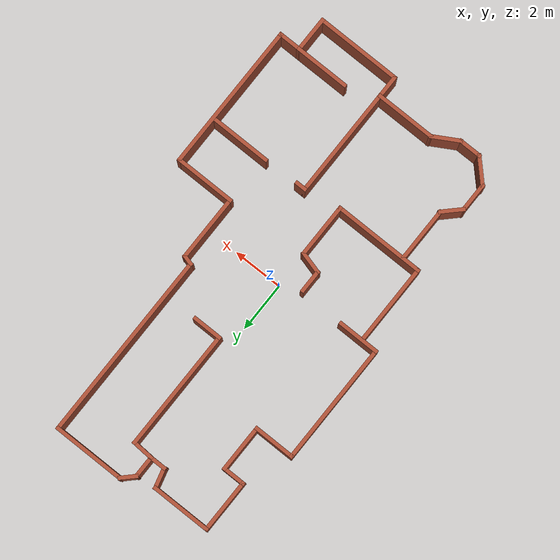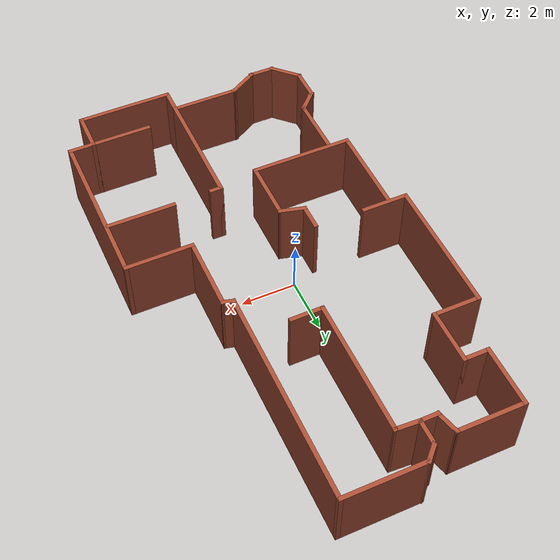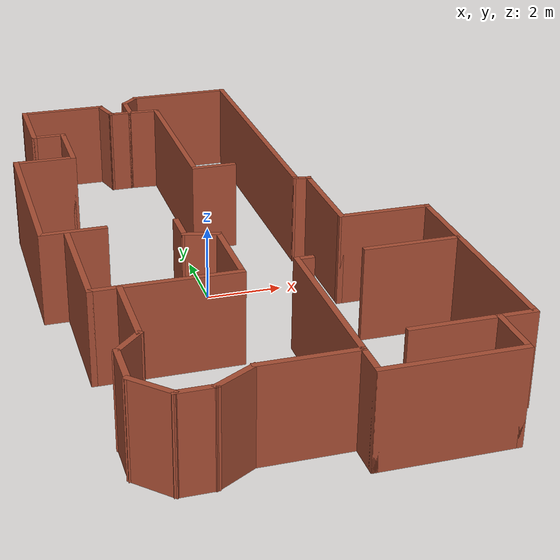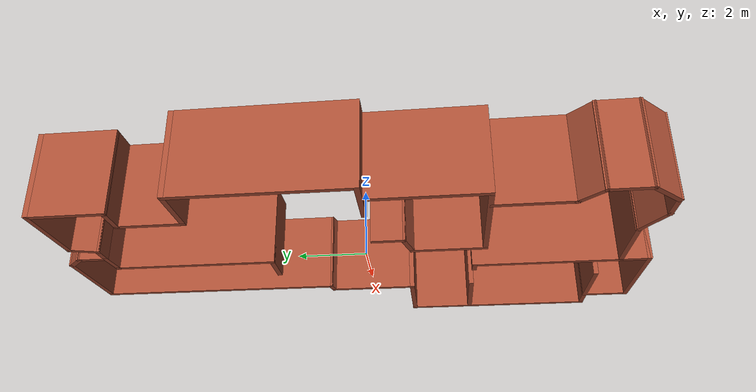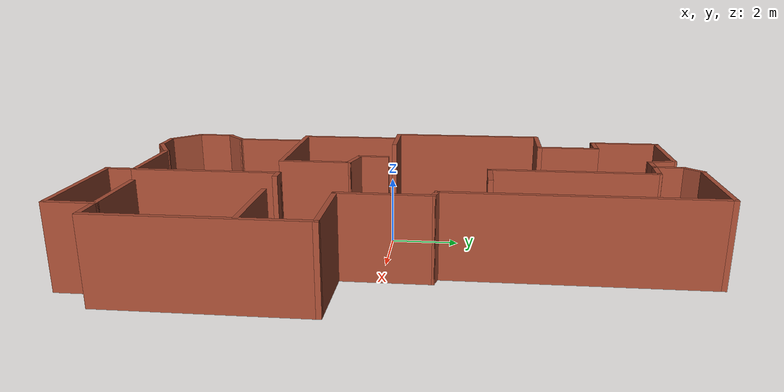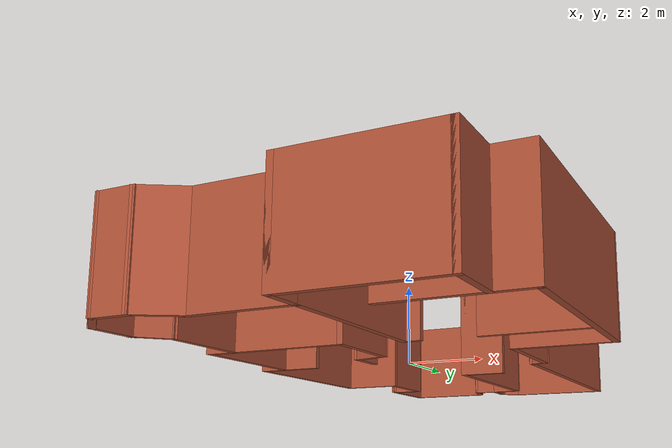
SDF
<?xml version='1.0'?>
<sdf version='1.6'>
  <model name='map_39'>
    <pose frame=''>0.634099 0.360121 0 0 -0 0</pose>
    <link name='Wall_0'>
      <collision name='Wall_0_Collision'>
        <geometry>
          <box>
            <size>2.5 0.15 2.5</size>
          </box>
        </geometry>
        <pose frame=''>0 0 1.25 0 -0 0</pose>
      </collision>
      <visual name='Wall_0_Visual'>
        <pose frame=''>0 0 1.25 0 -0 0</pose>
        <geometry>
          <box>
            <size>2.5 0.15 2.5</size>
          </box>
        </geometry>
        <material>
          <script>
            <uri>file://media/materials/scripts/gazebo.material</uri>
            <name>Gazebo/Bricks</name>
          </script>
          <ambient>1 1 1 1</ambient>
        </material>
        <meta>
          <layer>0</layer>
        </meta>
      </visual>
      <pose frame=''>-3.00691 8.2096 0 0 -0 3.14159</pose>
    </link>
    <link name='Wall_1'>
      <collision name='Wall_1_Collision'>
        <geometry>
          <box>
            <size>2.25 0.15 2.5</size>
          </box>
        </geometry>
        <pose frame=''>0 0 1.25 0 -0 0</pose>
      </collision>
      <visual name='Wall_1_Visual'>
        <pose frame=''>0 0 1.25 0 -0 0</pose>
        <geometry>
          <box>
            <size>2.25 0.15 2.5</size>
          </box>
        </geometry>
        <material>
          <script>
            <uri>file://media/materials/scripts/gazebo.material</uri>
            <name>Gazebo/Bricks</name>
          </script>
          <ambient>1 1 1 1</ambient>
        </material>
        <meta>
          <layer>0</layer>
        </meta>
      </visual>
      <pose frame=''>-4.18191 7.1596 0 0 -0 -1.5708</pose>
    </link>
    <link name='Wall_11'>
      <collision name='Wall_11_Collision'>
        <geometry>
          <box>
            <size>2.25 0.15 2.5</size>
          </box>
        </geometry>
        <pose frame=''>0 0 1.25 0 -0 0</pose>
      </collision>
      <visual name='Wall_11_Visual'>
        <pose frame=''>0 0 1.25 0 -0 0</pose>
        <geometry>
          <box>
            <size>2.25 0.15 2.5</size>
          </box>
        </geometry>
        <material>
          <script>
            <uri>file://media/materials/scripts/gazebo.material</uri>
            <name>Gazebo/Bricks</name>
          </script>
          <ambient>1 1 1 1</ambient>
        </material>
        <meta>
          <layer>0</layer>
        </meta>
      </visual>
      <pose frame=''>-3.59749 -4.93197 0 0 -0 -1.5708</pose>
    </link>
    <link name='Wall_12'>
      <collision name='Wall_12_Collision'>
        <geometry>
          <box>
            <size>1 0.15 2.5</size>
          </box>
        </geometry>
        <pose frame=''>0 0 1.25 0 -0 0</pose>
      </collision>
      <visual name='Wall_12_Visual'>
        <pose frame=''>0 0 1.25 0 -0 0</pose>
        <geometry>
          <box>
            <size>1 0.15 2.5</size>
          </box>
        </geometry>
        <material>
          <script>
            <uri>file://media/materials/scripts/gazebo.material</uri>
            <name>Gazebo/Bricks</name>
          </script>
          <ambient>1 1 1 1</ambient>
        </material>
        <meta>
          <layer>0</layer>
        </meta>
      </visual>
      <pose frame=''>-3.89801 -6.28249 0 0 -0 -2.35619</pose>
    </link>
    <link name='Wall_13'>
      <collision name='Wall_13_Collision'>
        <geometry>
          <box>
            <size>1.25 0.15 2.5</size>
          </box>
        </geometry>
        <pose frame=''>0 0 1.25 0 -0 0</pose>
      </collision>
      <visual name='Wall_13_Visual'>
        <pose frame=''>0 0 1.25 0 -0 0</pose>
        <geometry>
          <box>
            <size>1.25 0.15 2.5</size>
          </box>
        </geometry>
        <material>
          <script>
            <uri>file://media/materials/scripts/gazebo.material</uri>
            <name>Gazebo/Bricks</name>
          </script>
          <ambient>1 1 1 1</ambient>
        </material>
        <meta>
          <layer>0</layer>
        </meta>
      </visual>
      <pose frame=''>-4.19853 -7.13301 0 0 -0 -1.5708</pose>
    </link>
    <link name='Wall_14'>
      <collision name='Wall_14_Collision'>
        <geometry>
          <box>
            <size>1.25 0.15 2.5</size>
          </box>
        </geometry>
        <pose frame=''>0 0 1.25 0 -0 0</pose>
      </collision>
      <visual name='Wall_14_Visual'>
        <pose frame=''>0 0 1.25 0 -0 0</pose>
        <geometry>
          <box>
            <size>1.25 0.15 2.5</size>
          </box>
        </geometry>
        <material>
          <script>
            <uri>file://media/materials/scripts/gazebo.material</uri>
            <name>Gazebo/Bricks</name>
          </script>
          <ambient>1 1 1 1</ambient>
        </material>
        <meta>
          <layer>0</layer>
        </meta>
      </visual>
      <pose frame=''>-3.80963 -8.07192 0 0 -0 -0.785398</pose>
    </link>
    <link name='Wall_15'>
      <collision name='Wall_15_Collision'>
        <geometry>
          <box>
            <size>1 0.15 2.5</size>
          </box>
        </geometry>
        <pose frame=''>0 0 1.25 0 -0 0</pose>
      </collision>
      <visual name='Wall_15_Visual'>
        <pose frame=''>0 0 1.25 0 -0 0</pose>
        <geometry>
          <box>
            <size>1 0.15 2.5</size>
          </box>
        </geometry>
        <material>
          <script>
            <uri>file://media/materials/scripts/gazebo.material</uri>
            <name>Gazebo/Bricks</name>
          </script>
          <ambient>1 1 1 1</ambient>
        </material>
        <meta>
          <layer>0</layer>
        </meta>
      </visual>
      <pose frame=''>-2.99572 -8.46083 0 0 -0 0</pose>
    </link>
    <link name='Wall_16'>
      <collision name='Wall_16_Collision'>
        <geometry>
          <box>
            <size>1.25 0.15 2.5</size>
          </box>
        </geometry>
        <pose frame=''>0 0 1.25 0 -0 0</pose>
      </collision>
      <visual name='Wall_16_Visual'>
        <pose frame=''>0 0 1.25 0 -0 0</pose>
        <geometry>
          <box>
            <size>1.25 0.15 2.5</size>
          </box>
        </geometry>
        <material>
          <script>
            <uri>file://media/materials/scripts/gazebo.material</uri>
            <name>Gazebo/Bricks</name>
          </script>
          <ambient>1 1 1 1</ambient>
        </material>
        <meta>
          <layer>0</layer>
        </meta>
      </visual>
      <pose frame=''>-2.0944 -8.18583 0 0 -0 0.523599</pose>
    </link>
    <link name='Wall_17'>
      <collision name='Wall_17_Collision'>
        <geometry>
          <box>
            <size>2.5 0.15 2.5</size>
          </box>
        </geometry>
        <pose frame=''>0 0 1.25 0 -0 0</pose>
      </collision>
      <visual name='Wall_17_Visual'>
        <pose frame=''>0 0 1.25 0 -0 0</pose>
        <geometry>
          <box>
            <size>2.5 0.15 2.5</size>
          </box>
        </geometry>
        <material>
          <script>
            <uri>file://media/materials/scripts/gazebo.material</uri>
            <name>Gazebo/Bricks</name>
          </script>
          <ambient>1 1 1 1</ambient>
        </material>
        <meta>
          <layer>0</layer>
        </meta>
      </visual>
      <pose frame=''>-0.443089 -7.91083 0 0 -0 0</pose>
    </link>
    <link name='Wall_2'>
      <collision name='Wall_2_Collision'>
        <geometry>
          <box>
            <size>1 0.15 2.5</size>
          </box>
        </geometry>
        <pose frame=''>0 0 1.25 0 -0 0</pose>
      </collision>
      <visual name='Wall_2_Visual'>
        <pose frame=''>0 0 1.25 0 -0 0</pose>
        <geometry>
          <box>
            <size>1 0.15 2.5</size>
          </box>
        </geometry>
        <material>
          <script>
            <uri>file://media/materials/scripts/gazebo.material</uri>
            <name>Gazebo/Bricks</name>
          </script>
          <ambient>1 1 1 1</ambient>
        </material>
        <meta>
          <layer>0</layer>
        </meta>
      </visual>
      <pose frame=''>-3.75691 6.1096 0 0 -0 0</pose>
    </link>
    <link name='Wall_20'>
      <collision name='Wall_20_Collision'>
        <geometry>
          <box>
            <size>1 0.15 2.5</size>
          </box>
        </geometry>
        <pose frame=''>0 0 1.25 0 -0 0</pose>
      </collision>
      <visual name='Wall_20_Visual'>
        <pose frame=''>0 0 1.25 0 -0 0</pose>
        <geometry>
          <box>
            <size>1 0.15 2.5</size>
          </box>
        </geometry>
        <material>
          <script>
            <uri>file://media/materials/scripts/gazebo.material</uri>
            <name>Gazebo/Bricks</name>
          </script>
          <ambient>1 1 1 1</ambient>
        </material>
        <meta>
          <layer>0</layer>
        </meta>
      </visual>
      <pose frame=''>0.731911 -8.33583 0 0 -0 -1.5708</pose>
    </link>
    <link name='Wall_21'>
      <collision name='Wall_21_Collision'>
        <geometry>
          <box>
            <size>3.5 0.15 2.5</size>
          </box>
        </geometry>
        <pose frame=''>0 0 1.25 0 -0 0</pose>
      </collision>
      <visual name='Wall_21_Visual'>
        <pose frame=''>0 0 1.25 0 -0 0</pose>
        <geometry>
          <box>
            <size>3.5 0.15 2.5</size>
          </box>
        </geometry>
        <material>
          <script>
            <uri>file://media/materials/scripts/gazebo.material</uri>
            <name>Gazebo/Bricks</name>
          </script>
          <ambient>1 1 1 1</ambient>
        </material>
        <meta>
          <layer>0</layer>
        </meta>
      </visual>
      <pose frame=''>2.40691 -8.76083 0 0 -0 0</pose>
    </link>
    <link name='Wall_22'>
      <collision name='Wall_22_Collision'>
        <geometry>
          <box>
            <size>1.5 0.15 2.5</size>
          </box>
        </geometry>
        <pose frame=''>0 0 1.25 0 -0 0</pose>
      </collision>
      <visual name='Wall_22_Visual'>
        <pose frame=''>0 0 1.25 0 -0 0</pose>
        <geometry>
          <box>
            <size>1.5 0.15 2.5</size>
          </box>
        </geometry>
        <material>
          <script>
            <uri>file://media/materials/scripts/gazebo.material</uri>
            <name>Gazebo/Bricks</name>
          </script>
          <ambient>1 1 1 1</ambient>
        </material>
        <meta>
          <layer>0</layer>
        </meta>
      </visual>
      <pose frame=''>4.08191 -8.08583 0 0 -0 1.5708</pose>
    </link>
    <link name='Wall_23'>
      <collision name='Wall_23_Collision'>
        <geometry>
          <box>
            <size>1 0.15 2.5</size>
          </box>
        </geometry>
        <pose frame=''>0 0 1.25 0 -0 0</pose>
      </collision>
      <visual name='Wall_23_Visual'>
        <pose frame=''>0 0 1.25 0 -0 0</pose>
        <geometry>
          <box>
            <size>1 0.15 2.5</size>
          </box>
        </geometry>
        <material>
          <script>
            <uri>file://media/materials/scripts/gazebo.material</uri>
            <name>Gazebo/Bricks</name>
          </script>
          <ambient>1 1 1 1</ambient>
        </material>
        <meta>
          <layer>0</layer>
        </meta>
      </visual>
      <pose frame=''>4.50691 -7.41083 0 0 -0 0</pose>
    </link>
    <link name='Wall_24'>
      <collision name='Wall_24_Collision'>
        <geometry>
          <box>
            <size>6 0.15 2.5</size>
          </box>
        </geometry>
        <pose frame=''>0 0 1.25 0 -0 0</pose>
      </collision>
      <visual name='Wall_24_Visual'>
        <pose frame=''>0 0 1.25 0 -0 0</pose>
        <geometry>
          <box>
            <size>6 0.15 2.5</size>
          </box>
        </geometry>
        <material>
          <script>
            <uri>file://media/materials/scripts/gazebo.material</uri>
            <name>Gazebo/Bricks</name>
          </script>
          <ambient>1 1 1 1</ambient>
        </material>
        <meta>
          <layer>0</layer>
        </meta>
      </visual>
      <pose frame=''>4.93191 -4.48583 0 0 -0 1.5708</pose>
    </link>
    <link name='Wall_25'>
      <collision name='Wall_25_Collision'>
        <geometry>
          <box>
            <size>2.5 0.15 2.5</size>
          </box>
        </geometry>
        <pose frame=''>0 0 1.25 0 -0 0</pose>
      </collision>
      <visual name='Wall_25_Visual'>
        <pose frame=''>0 0 1.25 0 -0 0</pose>
        <geometry>
          <box>
            <size>2.5 0.15 2.5</size>
          </box>
        </geometry>
        <material>
          <script>
            <uri>file://media/materials/scripts/gazebo.material</uri>
            <name>Gazebo/Bricks</name>
          </script>
          <ambient>1 1 1 1</ambient>
        </material>
        <meta>
          <layer>0</layer>
        </meta>
      </visual>
      <pose frame=''>3.75691 -1.56083 0 0 -0 3.14159</pose>
    </link>
    <link name='Wall_26'>
      <collision name='Wall_26_Collision'>
        <geometry>
          <box>
            <size>2.75 0.15 2.5</size>
          </box>
        </geometry>
        <pose frame=''>0 0 1.25 0 -0 0</pose>
      </collision>
      <visual name='Wall_26_Visual'>
        <pose frame=''>0 0 1.25 0 -0 0</pose>
        <geometry>
          <box>
            <size>2.75 0.15 2.5</size>
          </box>
        </geometry>
        <material>
          <script>
            <uri>file://media/materials/scripts/gazebo.material</uri>
            <name>Gazebo/Bricks</name>
          </script>
          <ambient>1 1 1 1</ambient>
        </material>
        <meta>
          <layer>0</layer>
        </meta>
      </visual>
      <pose frame=''>2.58191 -0.260826 0 0 -0 1.5708</pose>
    </link>
    <link name='Wall_27'>
      <collision name='Wall_27_Collision'>
        <geometry>
          <box>
            <size>0.5 0.15 2.5</size>
          </box>
        </geometry>
        <pose frame=''>0 0 1.25 0 -0 0</pose>
      </collision>
      <visual name='Wall_27_Visual'>
        <pose frame=''>0 0 1.25 0 -0 0</pose>
        <geometry>
          <box>
            <size>0.5 0.15 2.5</size>
          </box>
        </geometry>
        <material>
          <script>
            <uri>file://media/materials/scripts/gazebo.material</uri>
            <name>Gazebo/Bricks</name>
          </script>
          <ambient>1 1 1 1</ambient>
        </material>
        <meta>
          <layer>0</layer>
        </meta>
      </visual>
      <pose frame=''>2.41287 1.08447 0 0 -0 2.87979</pose>
    </link>
    <link name='Wall_28'>
      <collision name='Wall_28_Collision'>
        <geometry>
          <box>
            <size>7.75 0.15 2.5</size>
          </box>
        </geometry>
        <pose frame=''>0 0 1.25 0 -0 0</pose>
      </collision>
      <visual name='Wall_28_Visual'>
        <pose frame=''>0 0 1.25 0 -0 0</pose>
        <geometry>
          <box>
            <size>7.75 0.15 2.5</size>
          </box>
        </geometry>
        <material>
          <script>
            <uri>file://media/materials/scripts/gazebo.material</uri>
            <name>Gazebo/Bricks</name>
          </script>
          <ambient>1 1 1 1</ambient>
        </material>
        <meta>
          <layer>0</layer>
        </meta>
      </visual>
      <pose frame=''>2.24384 4.92976 0 0 -0 1.5708</pose>
    </link>
    <link name='Wall_29'>
      <collision name='Wall_29_Collision'>
        <geometry>
          <box>
            <size>3 0.15 2.5</size>
          </box>
        </geometry>
        <pose frame=''>0 0 1.25 0 -0 0</pose>
      </collision>
      <visual name='Wall_29_Visual'>
        <pose frame=''>0 0 1.25 0 -0 0</pose>
        <geometry>
          <box>
            <size>3 0.15 2.5</size>
          </box>
        </geometry>
        <material>
          <script>
            <uri>file://media/materials/scripts/gazebo.material</uri>
            <name>Gazebo/Bricks</name>
          </script>
          <ambient>1 1 1 1</ambient>
        </material>
        <meta>
          <layer>0</layer>
        </meta>
      </visual>
      <pose frame=''>0.818837 8.72976 0 0 -0 3.14159</pose>
    </link>
    <link name='Wall_3'>
      <collision name='Wall_3_Collision'>
        <geometry>
          <box>
            <size>2 0.15 2.5</size>
          </box>
        </geometry>
        <pose frame=''>0 0 1.25 0 -0 0</pose>
      </collision>
      <visual name='Wall_3_Visual'>
        <pose frame=''>0 0 1.25 0 -0 0</pose>
        <geometry>
          <box>
            <size>2 0.15 2.5</size>
          </box>
        </geometry>
        <material>
          <script>
            <uri>file://media/materials/scripts/gazebo.material</uri>
            <name>Gazebo/Bricks</name>
          </script>
          <ambient>1 1 1 1</ambient>
        </material>
        <meta>
          <layer>0</layer>
        </meta>
      </visual>
      <pose frame=''>-3.33191 5.1846 0 0 -0 -1.5708</pose>
    </link>
    <link name='Wall_30'>
      <collision name='Wall_30_Collision'>
        <geometry>
          <box>
            <size>0.75 0.15 2.5</size>
          </box>
        </geometry>
        <pose frame=''>0 0 1.25 0 -0 0</pose>
      </collision>
      <visual name='Wall_30_Visual'>
        <pose frame=''>0 0 1.25 0 -0 0</pose>
        <geometry>
          <box>
            <size>0.75 0.15 2.5</size>
          </box>
        </geometry>
        <material>
          <script>
            <uri>file://media/materials/scripts/gazebo.material</uri>
            <name>Gazebo/Bricks</name>
          </script>
          <ambient>1 1 1 1</ambient>
        </material>
        <meta>
          <layer>0</layer>
        </meta>
      </visual>
      <pose frame=''>-0.818295 8.51763 0 0 -0 -2.35619</pose>
    </link>
    <link name='Wall_31'>
      <collision name='Wall_31_Collision'>
        <geometry>
          <box>
            <size>1 0.15 2.5</size>
          </box>
        </geometry>
        <pose frame=''>0 0 1.25 0 -0 0</pose>
      </collision>
      <visual name='Wall_31_Visual'>
        <pose frame=''>0 0 1.25 0 -0 0</pose>
        <geometry>
          <box>
            <size>1 0.15 2.5</size>
          </box>
        </geometry>
        <material>
          <script>
            <uri>file://media/materials/scripts/gazebo.material</uri>
            <name>Gazebo/Bricks</name>
          </script>
          <ambient>1 1 1 1</ambient>
        </material>
        <meta>
          <layer>0</layer>
        </meta>
      </visual>
      <pose frame=''>-1.03043 7.8805 0 0 -0 -1.5708</pose>
    </link>
    <link name='Wall_32'>
      <collision name='Wall_32_Collision'>
        <geometry>
          <box>
            <size>0.75 0.15 2.5</size>
          </box>
        </geometry>
        <pose frame=''>0 0 1.25 0 -0 0</pose>
      </collision>
      <visual name='Wall_32_Visual'>
        <pose frame=''>0 0 1.25 0 -0 0</pose>
        <geometry>
          <box>
            <size>0.75 0.15 2.5</size>
          </box>
        </geometry>
        <material>
          <script>
            <uri>file://media/materials/scripts/gazebo.material</uri>
            <name>Gazebo/Bricks</name>
          </script>
          <ambient>1 1 1 1</ambient>
        </material>
        <meta>
          <layer>0</layer>
        </meta>
      </visual>
      <pose frame=''>-1.33043 7.4555 0 0 -0 3.14159</pose>
    </link>
    <link name='Wall_33'>
      <collision name='Wall_33_Collision'>
        <geometry>
          <box>
            <size>0.930554 0.15 2.5</size>
          </box>
        </geometry>
        <pose frame=''>0 0 1.25 0 -0 0</pose>
      </collision>
      <visual name='Wall_33_Visual'>
        <pose frame=''>0 0 1.25 0 -0 0</pose>
        <geometry>
          <box>
            <size>0.930554 0.15 2.5</size>
          </box>
        </geometry>
        <material>
          <script>
            <uri>file://media/materials/scripts/gazebo.material</uri>
            <name>Gazebo/Bricks</name>
          </script>
          <ambient>1 1 1 1</ambient>
        </material>
        <meta>
          <layer>0</layer>
        </meta>
      </visual>
      <pose frame=''>-1.73117 7.83255 0 0 -0 1.83188</pose>
    </link>
    <link name='Wall_35'>
      <collision name='Wall_35_Collision'>
        <geometry>
          <box>
            <size>2.5 0.15 2.5</size>
          </box>
        </geometry>
        <pose frame=''>0 0 1.25 0 -0 0</pose>
      </collision>
      <visual name='Wall_35_Visual'>
        <pose frame=''>0 0 1.25 0 -0 0</pose>
        <geometry>
          <box>
            <size>2.5 0.15 2.5</size>
          </box>
        </geometry>
        <material>
          <script>
            <uri>file://media/materials/scripts/gazebo.material</uri>
            <name>Gazebo/Bricks</name>
          </script>
          <ambient>1 1 1 1</ambient>
        </material>
        <meta>
          <layer>0</layer>
        </meta>
      </visual>
      <pose frame=''>3.67679 -3.50745 0 0 -0 0</pose>
    </link>
    <link name='Wall_37'>
      <collision name='Wall_37_Collision'>
        <geometry>
          <box>
            <size>2.25 0.15 2.5</size>
          </box>
        </geometry>
        <pose frame=''>0 0 1.25 0 -0 0</pose>
      </collision>
      <visual name='Wall_37_Visual'>
        <pose frame=''>0 0 1.25 0 -0 0</pose>
        <geometry>
          <box>
            <size>2.25 0.15 2.5</size>
          </box>
        </geometry>
        <material>
          <script>
            <uri>file://media/materials/scripts/gazebo.material</uri>
            <name>Gazebo/Bricks</name>
          </script>
          <ambient>1 1 1 1</ambient>
        </material>
        <meta>
          <layer>0</layer>
        </meta>
      </visual>
      <pose frame=''>3.03191 -7.41083 0 0 -0 3.14159</pose>
    </link>
    <link name='Wall_4'>
      <collision name='Wall_4_Collision'>
        <geometry>
          <box>
            <size>1.75 0.15 2.5</size>
          </box>
        </geometry>
        <pose frame=''>0 0 1.25 0 -0 0</pose>
      </collision>
      <visual name='Wall_4_Visual'>
        <pose frame=''>0 0 1.25 0 -0 0</pose>
        <geometry>
          <box>
            <size>1.75 0.15 2.5</size>
          </box>
        </geometry>
        <material>
          <script>
            <uri>file://media/materials/scripts/gazebo.material</uri>
            <name>Gazebo/Bricks</name>
          </script>
          <ambient>1 1 1 1</ambient>
        </material>
        <meta>
          <layer>0</layer>
        </meta>
      </visual>
      <pose frame=''>-4.13191 4.2596 0 0 -0 3.14159</pose>
    </link>
    <link name='Wall_41'>
      <collision name='Wall_41_Collision'>
        <geometry>
          <box>
            <size>3.75 0.15 2.5</size>
          </box>
        </geometry>
        <pose frame=''>0 0 1.25 0 -0 0</pose>
      </collision>
      <visual name='Wall_41_Visual'>
        <pose frame=''>0 0 1.25 0 -0 0</pose>
        <geometry>
          <box>
            <size>3.75 0.15 2.5</size>
          </box>
        </geometry>
        <material>
          <script>
            <uri>file://media/materials/scripts/gazebo.material</uri>
            <name>Gazebo/Bricks</name>
          </script>
          <ambient>1 1 1 1</ambient>
        </material>
        <meta>
          <layer>0</layer>
        </meta>
      </visual>
      <pose frame=''>-2.49303 -3.82532 0 0 -0 0</pose>
    </link>
    <link name='Wall_42'>
      <collision name='Wall_42_Collision'>
        <geometry>
          <box>
            <size>2.25 0.15 2.5</size>
          </box>
        </geometry>
        <pose frame=''>0 0 1.25 0 -0 0</pose>
      </collision>
      <visual name='Wall_42_Visual'>
        <pose frame=''>0 0 1.25 0 -0 0</pose>
        <geometry>
          <box>
            <size>2.25 0.15 2.5</size>
          </box>
        </geometry>
        <material>
          <script>
            <uri>file://media/materials/scripts/gazebo.material</uri>
            <name>Gazebo/Bricks</name>
          </script>
          <ambient>1 1 1 1</ambient>
        </material>
        <meta>
          <layer>0</layer>
        </meta>
      </visual>
      <pose frame=''>-0.693026 -2.77532 0 0 -0 1.5708</pose>
    </link>
    <link name='Wall_43'>
      <collision name='Wall_43_Collision'>
        <geometry>
          <box>
            <size>1 0.15 2.5</size>
          </box>
        </geometry>
        <pose frame=''>0 0 1.25 0 -0 0</pose>
      </collision>
      <visual name='Wall_43_Visual'>
        <pose frame=''>0 0 1.25 0 -0 0</pose>
        <geometry>
          <box>
            <size>1 0.15 2.5</size>
          </box>
        </geometry>
        <material>
          <script>
            <uri>file://media/materials/scripts/gazebo.material</uri>
            <name>Gazebo/Bricks</name>
          </script>
          <ambient>1 1 1 1</ambient>
        </material>
        <meta>
          <layer>0</layer>
        </meta>
      </visual>
      <pose frame=''>-1.10354 -1.61532 0 0 -0 2.87979</pose>
    </link>
    <link name='Wall_44'>
      <collision name='Wall_44_Collision'>
        <geometry>
          <box>
            <size>1 0.15 2.5</size>
          </box>
        </geometry>
        <pose frame=''>0 0 1.25 0 -0 0</pose>
      </collision>
      <visual name='Wall_44_Visual'>
        <pose frame=''>0 0 1.25 0 -0 0</pose>
        <geometry>
          <box>
            <size>1 0.15 2.5</size>
          </box>
        </geometry>
        <material>
          <script>
            <uri>file://media/materials/scripts/gazebo.material</uri>
            <name>Gazebo/Bricks</name>
          </script>
          <ambient>1 1 1 1</ambient>
        </material>
        <meta>
          <layer>0</layer>
        </meta>
      </visual>
      <pose frame=''>-1.51406 -1.08032 0 0 -0 1.5708</pose>
    </link>
    <link name='Wall_46'>
      <collision name='Wall_46_Collision'>
        <geometry>
          <box>
            <size>5 0.15 2.5</size>
          </box>
        </geometry>
        <pose frame=''>0 0 1.25 0 -0 0</pose>
      </collision>
      <visual name='Wall_46_Visual'>
        <pose frame=''>0 0 1.25 0 -0 0</pose>
        <geometry>
          <box>
            <size>5 0.15 2.5</size>
          </box>
        </geometry>
        <material>
          <script>
            <uri>file://media/materials/scripts/gazebo.material</uri>
            <name>Gazebo/Bricks</name>
          </script>
          <ambient>1 1 1 1</ambient>
        </material>
        <meta>
          <layer>0</layer>
        </meta>
      </visual>
      <pose frame=''>-0.226836 4.98206 0 0 -0 -1.5708</pose>
    </link>
    <link name='Wall_47'>
      <collision name='Wall_47_Collision'>
        <geometry>
          <box>
            <size>1.25 0.15 2.5</size>
          </box>
        </geometry>
        <pose frame=''>0 0 1.25 0 -0 0</pose>
      </collision>
      <visual name='Wall_47_Visual'>
        <pose frame=''>0 0 1.25 0 -0 0</pose>
        <geometry>
          <box>
            <size>1.25 0.15 2.5</size>
          </box>
        </geometry>
        <material>
          <script>
            <uri>file://media/materials/scripts/gazebo.material</uri>
            <name>Gazebo/Bricks</name>
          </script>
          <ambient>1 1 1 1</ambient>
        </material>
        <meta>
          <layer>0</layer>
        </meta>
      </visual>
      <pose frame=''>0.323164 2.55706 0 0 -0 0</pose>
    </link>
    <link name='Wall_49'>
      <collision name='Wall_49_Collision'>
        <geometry>
          <box>
            <size>0.955049 0.15 2.5</size>
          </box>
        </geometry>
        <pose frame=''>0 0 1.25 0 -0 0</pose>
      </collision>
      <visual name='Wall_49_Visual'>
        <pose frame=''>0 0 1.25 0 -0 0</pose>
        <geometry>
          <box>
            <size>0.955049 0.15 2.5</size>
          </box>
        </geometry>
        <material>
          <script>
            <uri>file://media/materials/scripts/gazebo.material</uri>
            <name>Gazebo/Bricks</name>
          </script>
          <ambient>1 1 1 1</ambient>
        </material>
        <meta>
          <layer>0</layer>
        </meta>
      </visual>
      <pose frame=''>-0.628631 7.43128 0 0 -0 3.08139</pose>
    </link>
    <link name='Wall_5'>
      <collision name='Wall_5_Collision'>
        <geometry>
          <box>
            <size>5 0.15 2.5</size>
          </box>
        </geometry>
        <pose frame=''>0 0 1.25 0 -0 0</pose>
      </collision>
      <visual name='Wall_5_Visual'>
        <pose frame=''>0 0 1.25 0 -0 0</pose>
        <geometry>
          <box>
            <size>5 0.15 2.5</size>
          </box>
        </geometry>
        <material>
          <script>
            <uri>file://media/materials/scripts/gazebo.material</uri>
            <name>Gazebo/Bricks</name>
          </script>
          <ambient>1 1 1 1</ambient>
        </material>
        <meta>
          <layer>0</layer>
        </meta>
      </visual>
      <pose frame=''>-4.93191 1.8346 0 0 -0 -1.5708</pose>
    </link>
    <link name='Wall_52'>
      <collision name='Wall_52_Collision'>
        <geometry>
          <box>
            <size>4.5 0.15 2.5</size>
          </box>
        </geometry>
        <pose frame=''>0 0 1.25 0 -0 0</pose>
      </collision>
      <visual name='Wall_52_Visual'>
        <pose frame=''>0 0 1.25 0 -0 0</pose>
        <geometry>
          <box>
            <size>4.5 0.15 2.5</size>
          </box>
        </geometry>
        <material>
          <script>
            <uri>file://media/materials/scripts/gazebo.material</uri>
            <name>Gazebo/Bricks</name>
          </script>
          <ambient>1 1 1 1</ambient>
        </material>
        <meta>
          <layer>0</layer>
        </meta>
      </visual>
      <pose frame=''>0.731911 -5.73583 0 0 -0 1.5708</pose>
    </link>
    <link name='Wall_53'>
      <collision name='Wall_53_Collision'>
        <geometry>
          <box>
            <size>0.5 0.15 2.5</size>
          </box>
        </geometry>
        <pose frame=''>0 0 1.25 0 -0 0</pose>
      </collision>
      <visual name='Wall_53_Visual'>
        <pose frame=''>0 0 1.25 0 -0 0</pose>
        <geometry>
          <box>
            <size>0.5 0.15 2.5</size>
          </box>
        </geometry>
        <material>
          <script>
            <uri>file://media/materials/scripts/gazebo.material</uri>
            <name>Gazebo/Bricks</name>
          </script>
          <ambient>1 1 1 1</ambient>
        </material>
        <meta>
          <layer>0</layer>
        </meta>
      </visual>
      <pose frame=''>0.906911 -3.56083 0 0 -0 0</pose>
    </link>
    <link name='Wall_6'>
      <collision name='Wall_6_Collision'>
        <geometry>
          <box>
            <size>1.75 0.15 2.5</size>
          </box>
        </geometry>
        <pose frame=''>0 0 1.25 0 -0 0</pose>
      </collision>
      <visual name='Wall_6_Visual'>
        <pose frame=''>0 0 1.25 0 -0 0</pose>
        <geometry>
          <box>
            <size>1.75 0.15 2.5</size>
          </box>
        </geometry>
        <material>
          <script>
            <uri>file://media/materials/scripts/gazebo.material</uri>
            <name>Gazebo/Bricks</name>
          </script>
          <ambient>1 1 1 1</ambient>
        </material>
        <meta>
          <layer>0</layer>
        </meta>
      </visual>
      <pose frame=''>-4.13191 -0.590403 0 0 -0 0</pose>
    </link>
    <link name='Wall_8'>
      <collision name='Wall_8_Collision'>
        <geometry>
          <box>
            <size>3.25 0.15 2.5</size>
          </box>
        </geometry>
        <pose frame=''>0 0 1.25 0 -0 0</pose>
      </collision>
      <visual name='Wall_8_Visual'>
        <pose frame=''>0 0 1.25 0 -0 0</pose>
        <geometry>
          <box>
            <size>3.25 0.15 2.5</size>
          </box>
        </geometry>
        <material>
          <script>
            <uri>file://media/materials/scripts/gazebo.material</uri>
            <name>Gazebo/Bricks</name>
          </script>
          <ambient>1 1 1 1</ambient>
        </material>
        <meta>
          <layer>0</layer>
        </meta>
      </visual>
      <pose frame=''>-4.29303 -2.27532 0 0 -0 -1.5708</pose>
    </link>
    <static>1</static>
  </model>
</sdf>
